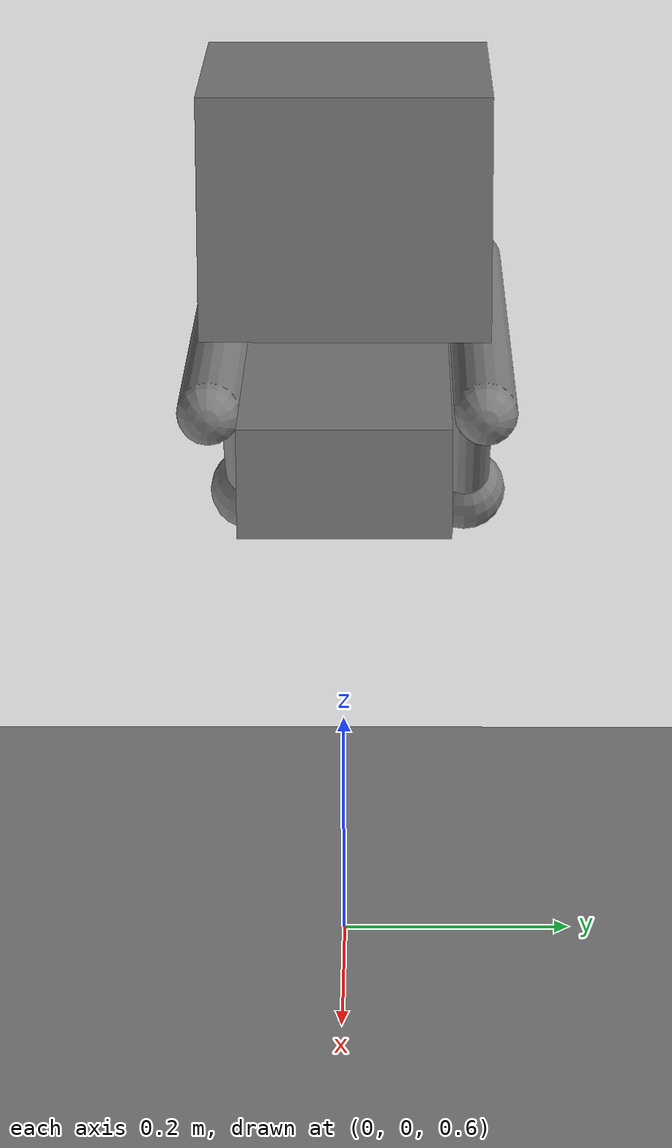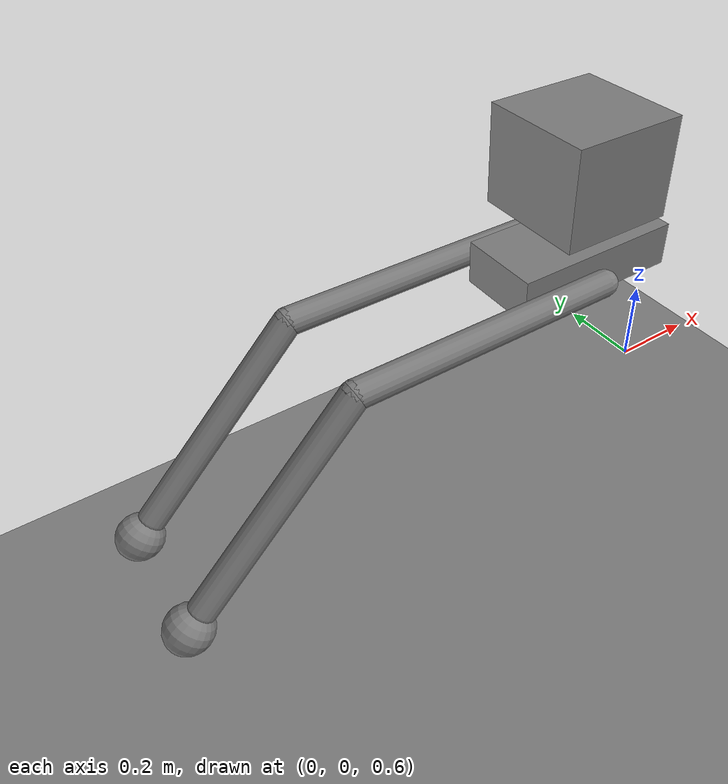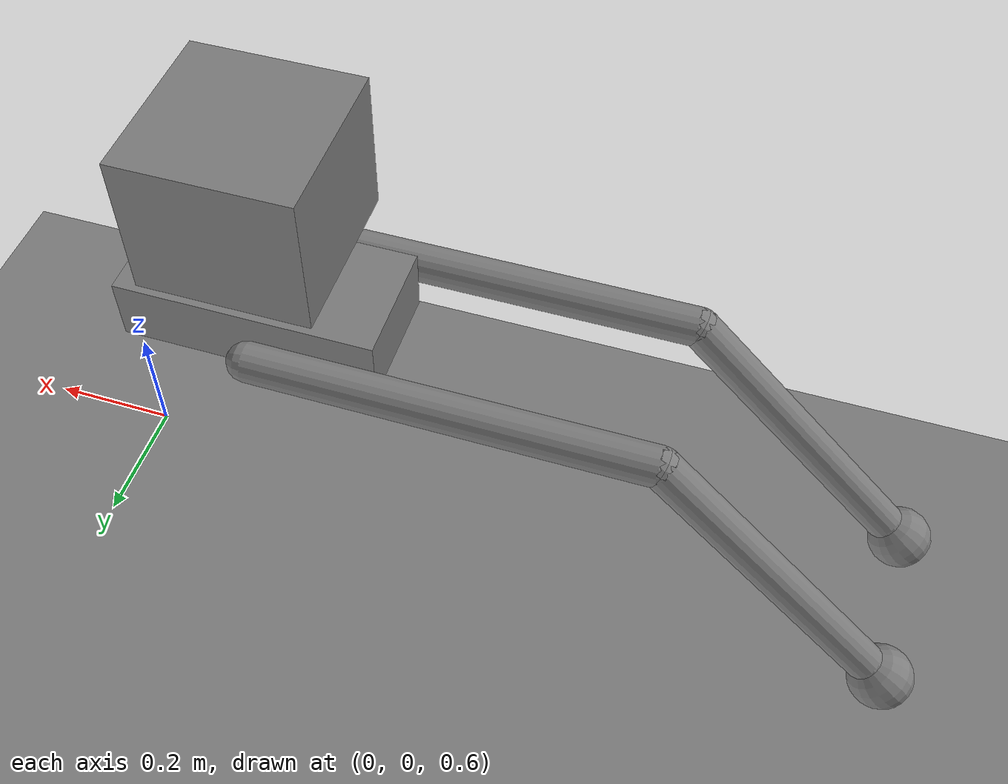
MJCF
<?xml version="1.0" encoding="utf-8"?>
<!-- 单独训练外肢体 -->
<mujoco model="XMLModel">
	<statistic center="0 0 1" extent="2"/>
	<option timestep="0.00555"/>
	<default>
		<motor ctrllimited="true" ctrlrange="-1 1"/>
		<default class="body">
			<geom condim="1" friction="1.0 0.05 0.05" type="capsule" solimp="0.9 0.99 0.003" solref="0.015 1"/>
			<joint armature="0.007" damping="0.1" limited="true" stiffness="5" type="hinge" solimplimit="0 0.99 0.01"/>
			<site group="3" size="0.04"/>
			<default class="force-torque">
				<site rgba="1 0 0 1" size="0.01 0.01 0.02" type="box"/>
			</default>
			<default class="touch">
				<site rgba="0 0 1 0.3" type="capsule"/>
			</default>
		</default>
	</default>
	<asset/>
	<worldbody>
		<geom conaffinity="1" name="floor" size="100 100 0.2" type="plane"/>
			<body childclass="body" name="SRL" pos="0 0 1">
                <freejoint name="root"/>
				<body name="SRL_root" pos="-0.25 0 0" quat="0.0 0.0 0.0 1.0">
					<geom density="1000" name="SRL_geom_root" pos="0 0 0" size="0.2 0.095 0.05" type="box" contype="1" conaffinity="1"/>
					<geom density="2000" name="SRL_geom_load" pos="0 0 0.22" size="0.13 0.13 0.11" type="box" contype="1" conaffinity="1"/>
					<body name="SRL_right_leg1" pos="0.02 0.13 0"  quat="1.0 0.0 0.0 0.0">
						<geom density="1000" fromto="0 0 0 0.60 0 0" name="SRL_geom_right_leg1" size="0.03" type="capsule"/>
						<joint armature="0.02" axis="0 0 1" damping="30" name="SRL_joint_right_hipjoint_z" pos="0 0 0" range="0 40" stiffness="300"/>
						<joint armature="0.02" axis="0 1 0" damping="30" name="SRL_joint_right_hipjoint_y" pos="0 0 0" range="-5 70" stiffness="300"/>
						<body name="SRL_right_leg2" pos="0.60 0 0" quat="0.92388 0.0 0.38268 0.0">
							<geom density="1000" fromto="0 0 0 0.50 0 0" name="SRL_geom_right_leg2" size="0.03" type="capsule"/>
							<joint armature="0.02" axis="0 1 0" damping="30" name="SRL_joint_right_kneejoint" pos="0 0 0" range="-50 50" stiffness="300"/>
							<body name="SRL_right_end" pos="0.50 0 0" quat="0.70711 0.0 -0.70711 0.0">
								<geom density="1000" friction="5.0 0.05 0.05" name="SRL_geom_right_end" pos="0 0 -0.045" size="0.05" type="sphere" collision="true" contype="1" conaffinity="1"/>
							</body>
						</body>
					</body>
					<body name="SRL_left_leg1" pos="0.02 -0.13 0"  quat="1.0 0.0 0.0 0.0">
						<geom density="1000" fromto="0 0 0 0.60 0 0" name="SRL_geom_left_leg1" size="0.03" type="capsule"/>
						<joint armature="0.02" axis="0 0 -1" damping="30" name="SRL_joint_left_hip_z" pos="0 0 0" range="0 40" stiffness="300"/>
						<joint armature="0.02" axis="0 1 0" damping="30" name="SRL_joint_left_hip_y" pos="0 0 0" range="-5 70" stiffness="300"/>
						<body name="SRL_left_leg2" pos="0.60 0 0" quat="0.92388 0.0 0.38268 0.0">
							<geom density="1000" fromto="0 0 0 0.50 0 0" name="SRL_geom_left_leg2" size="0.03" type="capsule"/>
							<joint armature="0.02" axis="0 1 0" damping="30" name="SRL_joint_left_kneejoint" pos="0 0 0" range="-50 50" stiffness="300"/>
							<body name="SRL_left_end" pos="0.50 0 0" quat="0.70711 0.0 -0.70711 0.0">
								<geom density="1000" friction="5.0 0.05 0.05" name="SRL_geom_left_end" pos="0 0 -0.045" size="0.05" type="sphere" collision="true"/>
							</body>
						</body>
					</body>
				</body>
			</body>
	</worldbody>
	<actuator>
		<motor gear="125" joint="SRL_joint_right_hipjoint_z" name="SRL_joint_right_hipjoint_z"/>
		<motor gear="125" joint="SRL_joint_right_hipjoint_y" name="SRL_joint_right_hipjoint_y"/>
		<motor gear="125" joint="SRL_joint_right_kneejoint" name="SRL_joint_right_kneejoint"/>
		<motor gear="125" joint="SRL_joint_right_ankle" name="SRL_joint_right_ankle"/>
		<motor gear="125" joint="SRL_joint_left_hip_z" name="SRL_joint_left_hip_z"/>
		<motor gear="125" joint="SRL_joint_left_hip_y" name="SRL_joint_left_hip_y"/>
		<motor gear="125" joint="SRL_joint_left_kneejoint" name="SRL_joint_left_kneejoint"/>
		<motor gear="125" joint="SRL_joint_left_ankle" name="SRL_joint_left_ankle"/>
	</actuator>
	<sensor>
		<subtreelinvel body="pelvis" name="pelvis_subtreelinvel"/>
		<accelerometer site="root" name="root_accel"/>
		<velocimeter site="root" name="root_vel"/>
		<gyro site="root" name="root_gyro"/>
		<force site="left_ankle" name="left_ankle_force"/>
		<force site="right_ankle" name="right_ankle_force"/>
		<force site="left_knee" name="left_knee_force"/>
		<force site="right_knee" name="right_knee_force"/>
		<force site="left_hip" name="left_hip_force"/>
		<force site="right_hip" name="right_hip_force"/>
		<torque site="left_ankle" name="left_ankle_torque"/>
		<torque site="right_ankle" name="right_ankle_torque"/>
		<torque site="left_knee" name="left_knee_torque"/>
		<torque site="right_knee" name="right_knee_torque"/>
		<torque site="left_hip" name="left_hip_torque"/>
		<torque site="right_hip" name="right_hip_torque"/>
		<touch site="pelvis" name="pelvis_touch"/>
		<touch site="upper_waist" name="upper_waist_touch"/>
		<touch site="torso" name="torso_touch"/>
		<touch site="head" name="head_touch"/>
		<touch site="right_upper_arm" name="right_upper_arm_touch"/>
		<touch site="right_lower_arm" name="right_lower_arm_touch"/>
		<touch site="right_hand" name="right_hand_touch"/>
		<touch site="left_upper_arm" name="left_upper_arm_touch"/>
		<touch site="left_lower_arm" name="left_lower_arm_touch"/>
		<touch site="left_hand" name="left_hand_touch"/>
		<touch site="right_thigh" name="right_thigh_touch"/>
		<touch site="right_shin" name="right_shin_touch"/>
		<touch site="right_foot" name="right_foot_touch"/>
		<touch site="left_thigh" name="left_thigh_touch"/>
		<touch site="left_shin" name="left_shin_touch"/>
		<touch site="left_foot" name="left_foot_touch"/>
	</sensor>
</mujoco>
